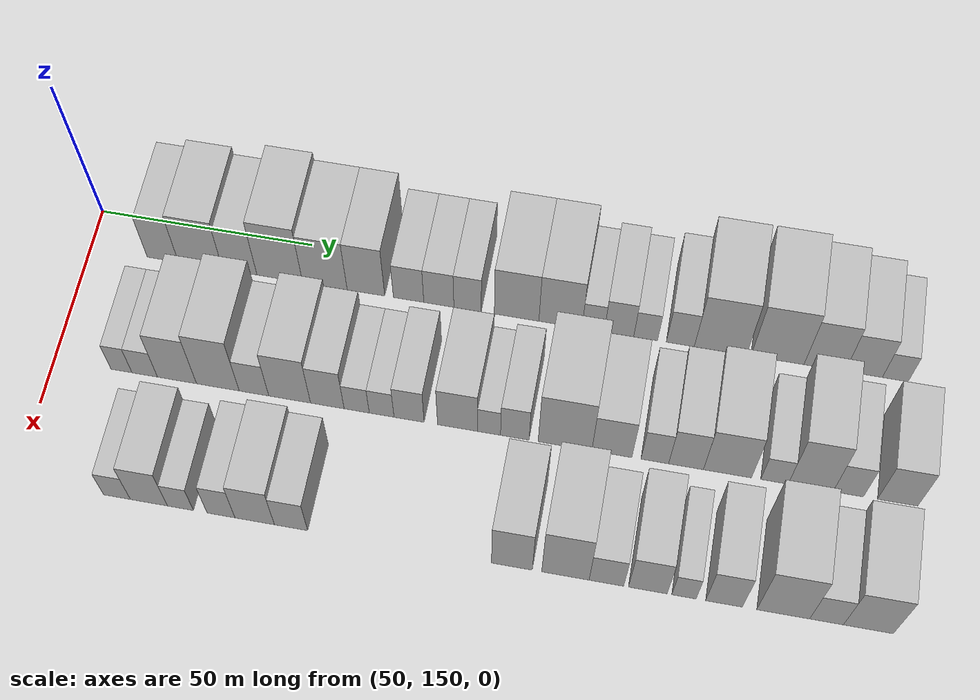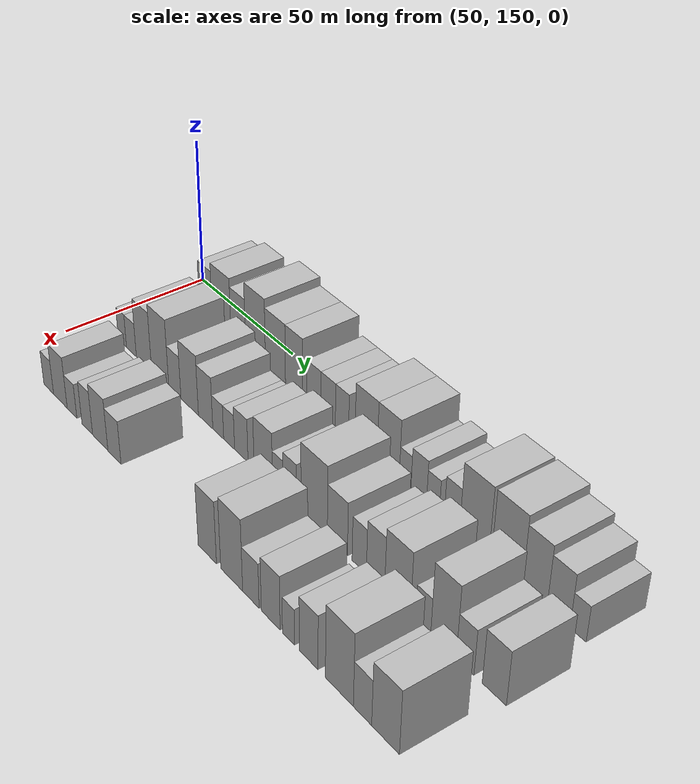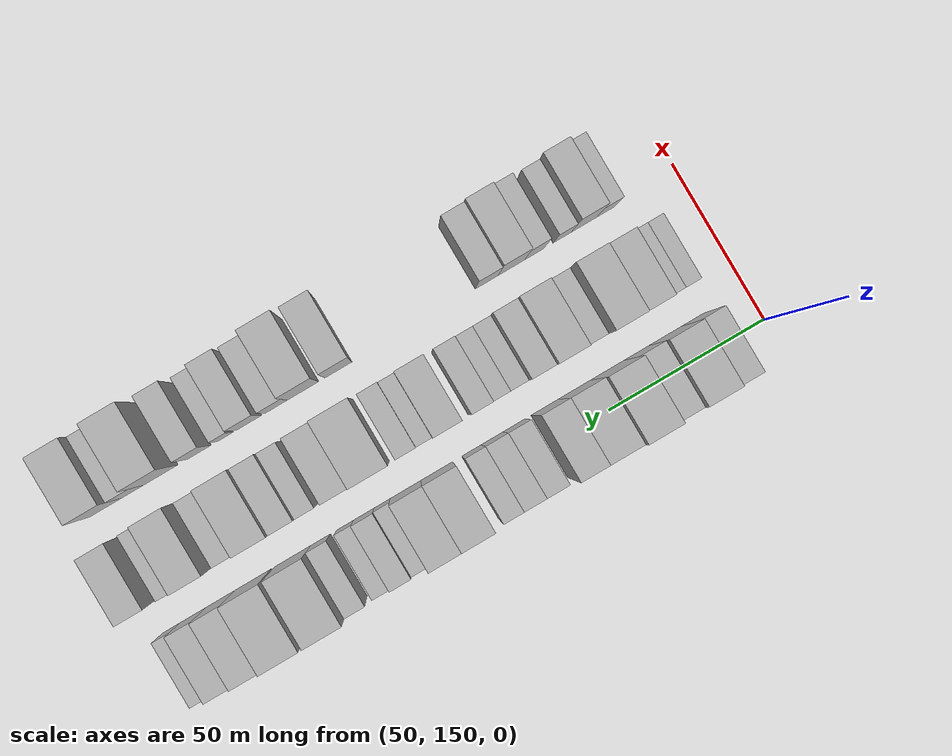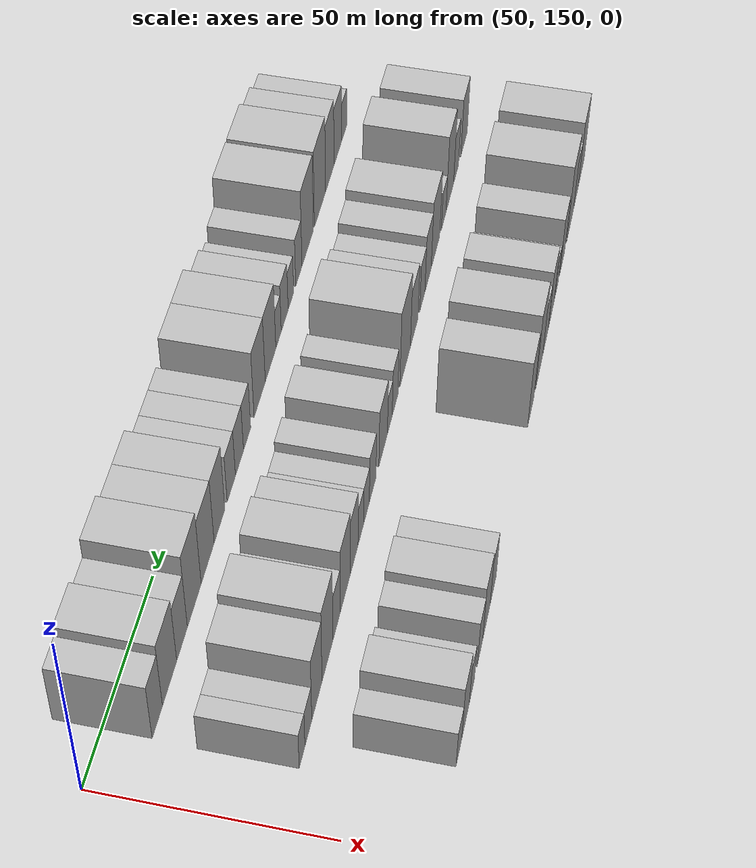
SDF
<sdf version="1.6">
 <world name="default">
  <model name="building_61">
   <static>1</static>
   <pose>50.0000 167.1661 0 0.000000 0.000000 0.000000</pose>
   <link name="link">
    <pose>0 0 9.00 0 0 0</pose>
    <collision name="collision"><geometry><box><size>20.0000 7.4073 18.0000</size></box></geometry></collision>
    <visual name="visual">
     <cast_shadows>0</cast_shadows>
     <geometry><box><size>20.0000 7.4073 18.0000</size></box></geometry>
     <material>
      <script>
       <uri>model://HANNAS_wall/materials/scripts</uri>
       <uri>model://HANNAS_wall/materials/textures</uri>
       <name>vrc/HANNAS_wall</name>
      </script>
     </material>
    </visual>
   </link>
  </model>
  <model name="building_62">
   <static>1</static>
   <pose>50.0000 176.1148 0 0.000000 0.000000 0.000000</pose>
   <link name="link">
    <pose>0 0 10.50 0 0 0</pose>
    <collision name="collision"><geometry><box><size>20.0000 10.4902 21.0000</size></box></geometry></collision>
    <visual name="visual">
     <cast_shadows>0</cast_shadows>
     <geometry><box><size>20.0000 10.4902 21.0000</size></box></geometry>
     <material>
      <script>
       <uri>model://HANNAS_wall/materials/scripts</uri>
       <uri>model://HANNAS_wall/materials/textures</uri>
       <name>vrc/HANNAS_wall</name>
      </script>
     </material>
    </visual>
   </link>
  </model>
  <model name="building_63">
   <static>1</static>
   <pose>50.0000 185.3982 0 0.000000 0.000000 0.000000</pose>
   <link name="link">
    <pose>0 0 9.00 0 0 0</pose>
    <collision name="collision"><geometry><box><size>20.0000 8.0765 18.0000</size></box></geometry></collision>
    <visual name="visual">
     <cast_shadows>0</cast_shadows>
     <geometry><box><size>20.0000 8.0765 18.0000</size></box></geometry>
     <material>
      <script>
       <uri>model://HANNAS_wall/materials/scripts</uri>
       <uri>model://HANNAS_wall/materials/textures</uri>
       <name>vrc/HANNAS_wall</name>
      </script>
     </material>
    </visual>
   </link>
  </model>
  <model name="building_64">
   <static>1</static>
   <pose>50.0000 194.7967 0 0.000000 0.000000 0.000000</pose>
   <link name="link">
    <pose>0 0 12.00 0 0 0</pose>
    <collision name="collision"><geometry><box><size>20.0000 10.7207 24.0000</size></box></geometry></collision>
    <visual name="visual">
     <cast_shadows>0</cast_shadows>
     <geometry><box><size>20.0000 10.7207 24.0000</size></box></geometry>
     <material>
      <script>
       <uri>model://HANNAS_wall/materials/scripts</uri>
       <uri>model://HANNAS_wall/materials/textures</uri>
       <name>vrc/HANNAS_wall</name>
      </script>
     </material>
    </visual>
   </link>
  </model>
  <model name="building_65">
   <static>1</static>
   <pose>50.0000 205.3637 0 0.000000 0.000000 0.000000</pose>
   <link name="link">
    <pose>0 0 10.50 0 0 0</pose>
    <collision name="collision"><geometry><box><size>20.0000 10.4133 21.0000</size></box></geometry></collision>
    <visual name="visual">
     <cast_shadows>0</cast_shadows>
     <geometry><box><size>20.0000 10.4133 21.0000</size></box></geometry>
     <material>
      <script>
       <uri>model://HANNAS_wall/materials/scripts</uri>
       <uri>model://HANNAS_wall/materials/textures</uri>
       <name>vrc/HANNAS_wall</name>
      </script>
     </material>
    </visual>
   </link>
  </model>
  <model name="building_66">
   <static>1</static>
   <pose>50.0000 214.9520 0 0.000000 0.000000 0.000000</pose>
   <link name="link">
    <pose>0 0 10.50 0 0 0</pose>
    <collision name="collision"><geometry><box><size>20.0000 8.7633 21.0000</size></box></geometry></collision>
    <visual name="visual">
     <cast_shadows>0</cast_shadows>
     <geometry><box><size>20.0000 8.7633 21.0000</size></box></geometry>
     <material>
      <script>
       <uri>model://HANNAS_wall/materials/scripts</uri>
       <uri>model://HANNAS_wall/materials/textures</uri>
       <name>vrc/HANNAS_wall</name>
      </script>
     </material>
    </visual>
   </link>
  </model>
  <model name="building_67">
   <static>1</static>
   <pose>50.0000 224.8549 0 0.000000 0.000000 0.000000</pose>
   <link name="link">
    <pose>0 0 7.50 0 0 0</pose>
    <collision name="collision"><geometry><box><size>20.0000 7.0425 15.0000</size></box></geometry></collision>
    <visual name="visual">
     <cast_shadows>0</cast_shadows>
     <geometry><box><size>20.0000 7.0425 15.0000</size></box></geometry>
     <material>
      <script>
       <uri>model://HANNAS_wall/materials/scripts</uri>
       <uri>model://HANNAS_wall/materials/textures</uri>
       <name>vrc/HANNAS_wall</name>
      </script>
     </material>
    </visual>
   </link>
  </model>
  <model name="building_68">
   <static>1</static>
   <pose>50.0000 231.8594 0 0.000000 0.000000 0.000000</pose>
   <link name="link">
    <pose>0 0 7.50 0 0 0</pose>
    <collision name="collision"><geometry><box><size>20.0000 6.9664 15.0000</size></box></geometry></collision>
    <visual name="visual">
     <cast_shadows>0</cast_shadows>
     <geometry><box><size>20.0000 6.9664 15.0000</size></box></geometry>
     <material>
      <script>
       <uri>model://HANNAS_wall/materials/scripts</uri>
       <uri>model://HANNAS_wall/materials/textures</uri>
       <name>vrc/HANNAS_wall</name>
      </script>
     </material>
    </visual>
   </link>
  </model>
  <model name="building_69">
   <static>1</static>
   <pose>50.0000 238.4958 0 0.000000 0.000000 0.000000</pose>
   <link name="link">
    <pose>0 0 7.50 0 0 0</pose>
    <collision name="collision"><geometry><box><size>20.0000 6.3065 15.0000</size></box></geometry></collision>
    <visual name="visual">
     <cast_shadows>0</cast_shadows>
     <geometry><box><size>20.0000 6.3065 15.0000</size></box></geometry>
     <material>
      <script>
       <uri>model://HANNAS_wall/materials/scripts</uri>
       <uri>model://HANNAS_wall/materials/textures</uri>
       <name>vrc/HANNAS_wall</name>
      </script>
     </material>
    </visual>
   </link>
  </model>
  <model name="building_70">
   <static>1</static>
   <pose>50.0000 249.7604 0 0.000000 0.000000 0.000000</pose>
   <link name="link">
    <pose>0 0 10.50 0 0 0</pose>
    <collision name="collision"><geometry><box><size>20.0000 10.2226 21.0000</size></box></geometry></collision>
    <visual name="visual">
     <cast_shadows>0</cast_shadows>
     <geometry><box><size>20.0000 10.2226 21.0000</size></box></geometry>
     <material>
      <script>
       <uri>model://HANNAS_wall/materials/scripts</uri>
       <uri>model://HANNAS_wall/materials/textures</uri>
       <name>vrc/HANNAS_wall</name>
      </script>
     </material>
    </visual>
   </link>
  </model>
  <model name="building_71">
   <static>1</static>
   <pose>50.0000 259.7965 0 0.000000 0.000000 0.000000</pose>
   <link name="link">
    <pose>0 0 10.50 0 0 0</pose>
    <collision name="collision"><geometry><box><size>20.0000 9.8497 21.0000</size></box></geometry></collision>
    <visual name="visual">
     <cast_shadows>0</cast_shadows>
     <geometry><box><size>20.0000 9.8497 21.0000</size></box></geometry>
     <material>
      <script>
       <uri>model://HANNAS_wall/materials/scripts</uri>
       <uri>model://HANNAS_wall/materials/textures</uri>
       <name>vrc/HANNAS_wall</name>
      </script>
     </material>
    </visual>
   </link>
  </model>
  <model name="building_72">
   <static>1</static>
   <pose>50.0000 267.2616 0 0.000000 0.000000 0.000000</pose>
   <link name="link">
    <pose>0 0 6.00 0 0 0</pose>
    <collision name="collision"><geometry><box><size>20.0000 5.0805 12.0000</size></box></geometry></collision>
    <visual name="visual">
     <cast_shadows>0</cast_shadows>
     <geometry><box><size>20.0000 5.0805 12.0000</size></box></geometry>
     <material>
      <script>
       <uri>model://HANNAS_wall/materials/scripts</uri>
       <uri>model://HANNAS_wall/materials/textures</uri>
       <name>vrc/HANNAS_wall</name>
      </script>
     </material>
    </visual>
   </link>
  </model>
  <model name="building_73">
   <static>1</static>
   <pose>50.0000 273.1415 0 0.000000 0.000000 0.000000</pose>
   <link name="link">
    <pose>0 0 7.50 0 0 0</pose>
    <collision name="collision"><geometry><box><size>20.0000 6.6795 15.0000</size></box></geometry></collision>
    <visual name="visual">
     <cast_shadows>0</cast_shadows>
     <geometry><box><size>20.0000 6.6795 15.0000</size></box></geometry>
     <material>
      <script>
       <uri>model://HANNAS_wall/materials/scripts</uri>
       <uri>model://HANNAS_wall/materials/textures</uri>
       <name>vrc/HANNAS_wall</name>
      </script>
     </material>
    </visual>
   </link>
  </model>
  <model name="building_74">
   <static>1</static>
   <pose>50.0000 279.1831 0 0.000000 0.000000 0.000000</pose>
   <link name="link">
    <pose>0 0 6.00 0 0 0</pose>
    <collision name="collision"><geometry><box><size>20.0000 5.4036 12.0000</size></box></geometry></collision>
    <visual name="visual">
     <cast_shadows>0</cast_shadows>
     <geometry><box><size>20.0000 5.4036 12.0000</size></box></geometry>
     <material>
      <script>
       <uri>model://HANNAS_wall/materials/scripts</uri>
       <uri>model://HANNAS_wall/materials/textures</uri>
       <name>vrc/HANNAS_wall</name>
      </script>
     </material>
    </visual>
   </link>
  </model>
  <model name="building_75">
   <static>1</static>
   <pose>50.0000 287.0433 0 0.000000 0.000000 0.000000</pose>
   <link name="link">
    <pose>0 0 7.50 0 0 0</pose>
    <collision name="collision"><geometry><box><size>20.0000 6.3169 15.0000</size></box></geometry></collision>
    <visual name="visual">
     <cast_shadows>0</cast_shadows>
     <geometry><box><size>20.0000 6.3169 15.0000</size></box></geometry>
     <material>
      <script>
       <uri>model://HANNAS_wall/materials/scripts</uri>
       <uri>model://HANNAS_wall/materials/textures</uri>
       <name>vrc/HANNAS_wall</name>
      </script>
     </material>
    </visual>
   </link>
  </model>
  <model name="building_76">
   <static>1</static>
   <pose>50.0000 296.0653 0 0.000000 0.000000 0.000000</pose>
   <link name="link">
    <pose>0 0 12.00 0 0 0</pose>
    <collision name="collision"><geometry><box><size>20.0000 11.7271 24.0000</size></box></geometry></collision>
    <visual name="visual">
     <cast_shadows>0</cast_shadows>
     <geometry><box><size>20.0000 11.7271 24.0000</size></box></geometry>
     <material>
      <script>
       <uri>model://HANNAS_wall/materials/scripts</uri>
       <uri>model://HANNAS_wall/materials/textures</uri>
       <name>vrc/HANNAS_wall</name>
      </script>
     </material>
    </visual>
   </link>
  </model>
  <model name="building_77">
   <static>1</static>
   <pose>50.0000 308.8688 0 0.000000 0.000000 0.000000</pose>
   <link name="link">
    <pose>0 0 12.00 0 0 0</pose>
    <collision name="collision"><geometry><box><size>20.0000 11.8798 24.0000</size></box></geometry></collision>
    <visual name="visual">
     <cast_shadows>0</cast_shadows>
     <geometry><box><size>20.0000 11.8798 24.0000</size></box></geometry>
     <material>
      <script>
       <uri>model://HANNAS_wall/materials/scripts</uri>
       <uri>model://HANNAS_wall/materials/textures</uri>
       <name>vrc/HANNAS_wall</name>
      </script>
     </material>
    </visual>
   </link>
  </model>
  <model name="building_78">
   <static>1</static>
   <pose>50.0000 319.3805 0 0.000000 0.000000 0.000000</pose>
   <link name="link">
    <pose>0 0 10.50 0 0 0</pose>
    <collision name="collision"><geometry><box><size>20.0000 9.1436 21.0000</size></box></geometry></collision>
    <visual name="visual">
     <cast_shadows>0</cast_shadows>
     <geometry><box><size>20.0000 9.1436 21.0000</size></box></geometry>
     <material>
      <script>
       <uri>model://HANNAS_wall/materials/scripts</uri>
       <uri>model://HANNAS_wall/materials/textures</uri>
       <name>vrc/HANNAS_wall</name>
      </script>
     </material>
    </visual>
   </link>
  </model>
  <model name="building_79">
   <static>1</static>
   <pose>50.0000 328.1039 0 0.000000 0.000000 0.000000</pose>
   <link name="link">
    <pose>0 0 9.00 0 0 0</pose>
    <collision name="collision"><geometry><box><size>20.0000 8.3032 18.0000</size></box></geometry></collision>
    <visual name="visual">
     <cast_shadows>0</cast_shadows>
     <geometry><box><size>20.0000 8.3032 18.0000</size></box></geometry>
     <material>
      <script>
       <uri>model://HANNAS_wall/materials/scripts</uri>
       <uri>model://HANNAS_wall/materials/textures</uri>
       <name>vrc/HANNAS_wall</name>
      </script>
     </material>
    </visual>
   </link>
  </model>
  <model name="building_80">
   <static>1</static>
   <pose>50.0000 335.1193 0 0.000000 0.000000 0.000000</pose>
   <link name="link">
    <pose>0 0 6.00 0 0 0</pose>
    <collision name="collision"><geometry><box><size>20.0000 5.7276 12.0000</size></box></geometry></collision>
    <visual name="visual">
     <cast_shadows>0</cast_shadows>
     <geometry><box><size>20.0000 5.7276 12.0000</size></box></geometry>
     <material>
      <script>
       <uri>model://HANNAS_wall/materials/scripts</uri>
       <uri>model://HANNAS_wall/materials/textures</uri>
       <name>vrc/HANNAS_wall</name>
      </script>
     </material>
    </visual>
   </link>
  </model>
  <model name="building_136">
   <static>1</static>
   <pose>79.0000 165.5498 0 0.000000 0.000000 0.000000</pose>
   <link name="link">
    <pose>0 0 6.00 0 0 0</pose>
    <collision name="collision"><geometry><box><size>20.0000 4.8491 12.0000</size></box></geometry></collision>
    <visual name="visual">
     <cast_shadows>0</cast_shadows>
     <geometry><box><size>20.0000 4.8491 12.0000</size></box></geometry>
     <material>
      <script>
       <uri>model://HANNAS_wall/materials/scripts</uri>
       <uri>model://HANNAS_wall/materials/textures</uri>
       <name>vrc/HANNAS_wall</name>
      </script>
     </material>
    </visual>
   </link>
  </model>
  <model name="building_137">
   <static>1</static>
   <pose>79.0000 170.9024 0 0.000000 0.000000 0.000000</pose>
   <link name="link">
    <pose>0 0 6.00 0 0 0</pose>
    <collision name="collision"><geometry><box><size>20.0000 5.8561 12.0000</size></box></geometry></collision>
    <visual name="visual">
     <cast_shadows>0</cast_shadows>
     <geometry><box><size>20.0000 5.8561 12.0000</size></box></geometry>
     <material>
      <script>
       <uri>model://HANNAS_wall/materials/scripts</uri>
       <uri>model://HANNAS_wall/materials/textures</uri>
       <name>vrc/HANNAS_wall</name>
      </script>
     </material>
    </visual>
   </link>
  </model>
  <model name="building_138">
   <static>1</static>
   <pose>79.0000 178.2999 0 0.000000 0.000000 0.000000</pose>
   <link name="link">
    <pose>0 0 10.50 0 0 0</pose>
    <collision name="collision"><geometry><box><size>20.0000 8.9388 21.0000</size></box></geometry></collision>
    <visual name="visual">
     <cast_shadows>0</cast_shadows>
     <geometry><box><size>20.0000 8.9388 21.0000</size></box></geometry>
     <material>
      <script>
       <uri>model://HANNAS_wall/materials/scripts</uri>
       <uri>model://HANNAS_wall/materials/textures</uri>
       <name>vrc/HANNAS_wall</name>
      </script>
     </material>
    </visual>
   </link>
  </model>
  <model name="building_139">
   <static>1</static>
   <pose>79.0000 187.6305 0 0.000000 0.000000 0.000000</pose>
   <link name="link">
    <pose>0 0 12.00 0 0 0</pose>
    <collision name="collision"><geometry><box><size>20.0000 9.7225 24.0000</size></box></geometry></collision>
    <visual name="visual">
     <cast_shadows>0</cast_shadows>
     <geometry><box><size>20.0000 9.7225 24.0000</size></box></geometry>
     <material>
      <script>
       <uri>model://HANNAS_wall/materials/scripts</uri>
       <uri>model://HANNAS_wall/materials/textures</uri>
       <name>vrc/HANNAS_wall</name>
      </script>
     </material>
    </visual>
   </link>
  </model>
  <model name="building_140">
   <static>1</static>
   <pose>79.0000 195.8603 0 0.000000 0.000000 0.000000</pose>
   <link name="link">
    <pose>0 0 7.50 0 0 0</pose>
    <collision name="collision"><geometry><box><size>20.0000 6.7371 15.0000</size></box></geometry></collision>
    <visual name="visual">
     <cast_shadows>0</cast_shadows>
     <geometry><box><size>20.0000 6.7371 15.0000</size></box></geometry>
     <material>
      <script>
       <uri>model://HANNAS_wall/materials/scripts</uri>
       <uri>model://HANNAS_wall/materials/textures</uri>
       <name>vrc/HANNAS_wall</name>
      </script>
     </material>
    </visual>
   </link>
  </model>
  <model name="building_141">
   <static>1</static>
   <pose>79.0000 203.9608 0 0.000000 0.000000 0.000000</pose>
   <link name="link">
    <pose>0 0 10.50 0 0 0</pose>
    <collision name="collision"><geometry><box><size>20.0000 9.4640 21.0000</size></box></geometry></collision>
    <visual name="visual">
     <cast_shadows>0</cast_shadows>
     <geometry><box><size>20.0000 9.4640 21.0000</size></box></geometry>
     <material>
      <script>
       <uri>model://HANNAS_wall/materials/scripts</uri>
       <uri>model://HANNAS_wall/materials/textures</uri>
       <name>vrc/HANNAS_wall</name>
      </script>
     </material>
    </visual>
   </link>
  </model>
  <model name="building_142">
   <static>1</static>
   <pose>79.0000 212.4863 0 0.000000 0.000000 0.000000</pose>
   <link name="link">
    <pose>0 0 9.00 0 0 0</pose>
    <collision name="collision"><geometry><box><size>20.0000 7.5870 18.0000</size></box></geometry></collision>
    <visual name="visual">
     <cast_shadows>0</cast_shadows>
     <geometry><box><size>20.0000 7.5870 18.0000</size></box></geometry>
     <material>
      <script>
       <uri>model://HANNAS_wall/materials/scripts</uri>
       <uri>model://HANNAS_wall/materials/textures</uri>
       <name>vrc/HANNAS_wall</name>
      </script>
     </material>
    </visual>
   </link>
  </model>
  <model name="building_143">
   <static>1</static>
   <pose>79.0000 219.1051 0 0.000000 0.000000 0.000000</pose>
   <link name="link">
    <pose>0 0 6.00 0 0 0</pose>
    <collision name="collision"><geometry><box><size>20.0000 5.6507 12.0000</size></box></geometry></collision>
    <visual name="visual">
     <cast_shadows>0</cast_shadows>
     <geometry><box><size>20.0000 5.6507 12.0000</size></box></geometry>
     <material>
      <script>
       <uri>model://HANNAS_wall/materials/scripts</uri>
       <uri>model://HANNAS_wall/materials/textures</uri>
       <name>vrc/HANNAS_wall</name>
      </script>
     </material>
    </visual>
   </link>
  </model>
  <model name="building_144">
   <static>1</static>
   <pose>79.0000 224.7075 0 0.000000 0.000000 0.000000</pose>
   <link name="link">
    <pose>0 0 6.00 0 0 0</pose>
    <collision name="collision"><geometry><box><size>20.0000 5.5541 12.0000</size></box></geometry></collision>
    <visual name="visual">
     <cast_shadows>0</cast_shadows>
     <geometry><box><size>20.0000 5.5541 12.0000</size></box></geometry>
     <material>
      <script>
       <uri>model://HANNAS_wall/materials/scripts</uri>
       <uri>model://HANNAS_wall/materials/textures</uri>
       <name>vrc/HANNAS_wall</name>
      </script>
     </material>
    </visual>
   </link>
  </model>
  <model name="building_145">
   <static>1</static>
   <pose>79.0000 230.8540 0 0.000000 0.000000 0.000000</pose>
   <link name="link">
    <pose>0 0 7.50 0 0 0</pose>
    <collision name="collision"><geometry><box><size>20.0000 6.7390 15.0000</size></box></geometry></collision>
    <visual name="visual">
     <cast_shadows>0</cast_shadows>
     <geometry><box><size>20.0000 6.7390 15.0000</size></box></geometry>
     <material>
      <script>
       <uri>model://HANNAS_wall/materials/scripts</uri>
       <uri>model://HANNAS_wall/materials/textures</uri>
       <name>vrc/HANNAS_wall</name>
      </script>
     </material>
    </visual>
   </link>
  </model>
  <model name="building_146">
   <static>1</static>
   <pose>79.0000 241.6900 0 0.000000 0.000000 0.000000</pose>
   <link name="link">
    <pose>0 0 9.00 0 0 0</pose>
    <collision name="collision"><geometry><box><size>20.0000 8.9329 18.0000</size></box></geometry></collision>
    <visual name="visual">
     <cast_shadows>0</cast_shadows>
     <geometry><box><size>20.0000 8.9329 18.0000</size></box></geometry>
     <material>
      <script>
       <uri>model://HANNAS_wall/materials/scripts</uri>
       <uri>model://HANNAS_wall/materials/textures</uri>
       <name>vrc/HANNAS_wall</name>
      </script>
     </material>
    </visual>
   </link>
  </model>
  <model name="building_147">
   <static>1</static>
   <pose>79.0000 248.6959 0 0.000000 0.000000 0.000000</pose>
   <link name="link">
    <pose>0 0 6.00 0 0 0</pose>
    <collision name="collision"><geometry><box><size>20.0000 5.0788 12.0000</size></box></geometry></collision>
    <visual name="visual">
     <cast_shadows>0</cast_shadows>
     <geometry><box><size>20.0000 5.0788 12.0000</size></box></geometry>
     <material>
      <script>
       <uri>model://HANNAS_wall/materials/scripts</uri>
       <uri>model://HANNAS_wall/materials/textures</uri>
       <name>vrc/HANNAS_wall</name>
      </script>
     </material>
    </visual>
   </link>
  </model>
  <model name="building_148">
   <static>1</static>
   <pose>79.0000 254.3958 0 0.000000 0.000000 0.000000</pose>
   <link name="link">
    <pose>0 0 7.50 0 0 0</pose>
    <collision name="collision"><geometry><box><size>20.0000 6.3210 15.0000</size></box></geometry></collision>
    <visual name="visual">
     <cast_shadows>0</cast_shadows>
     <geometry><box><size>20.0000 6.3210 15.0000</size></box></geometry>
     <material>
      <script>
       <uri>model://HANNAS_wall/materials/scripts</uri>
       <uri>model://HANNAS_wall/materials/textures</uri>
       <name>vrc/HANNAS_wall</name>
      </script>
     </material>
    </visual>
   </link>
  </model>
  <model name="building_149">
   <static>1</static>
   <pose>79.0000 265.4739 0 0.000000 0.000000 0.000000</pose>
   <link name="link">
    <pose>0 0 12.00 0 0 0</pose>
    <collision name="collision"><geometry><box><size>20.0000 11.8352 24.0000</size></box></geometry></collision>
    <visual name="visual">
     <cast_shadows>0</cast_shadows>
     <geometry><box><size>20.0000 11.8352 24.0000</size></box></geometry>
     <material>
      <script>
       <uri>model://HANNAS_wall/materials/scripts</uri>
       <uri>model://HANNAS_wall/materials/textures</uri>
       <name>vrc/HANNAS_wall</name>
      </script>
     </material>
    </visual>
   </link>
  </model>
  <model name="building_150">
   <static>1</static>
   <pose>79.0000 275.7903 0 0.000000 0.000000 0.000000</pose>
   <link name="link">
    <pose>0 0 9.00 0 0 0</pose>
    <collision name="collision"><geometry><box><size>20.0000 8.7977 18.0000</size></box></geometry></collision>
    <visual name="visual">
     <cast_shadows>0</cast_shadows>
     <geometry><box><size>20.0000 8.7977 18.0000</size></box></geometry>
     <material>
      <script>
       <uri>model://HANNAS_wall/materials/scripts</uri>
       <uri>model://HANNAS_wall/materials/textures</uri>
       <name>vrc/HANNAS_wall</name>
      </script>
     </material>
    </visual>
   </link>
  </model>
  <model name="building_151">
   <static>1</static>
   <pose>79.0000 285.2104 0 0.000000 0.000000 0.000000</pose>
   <link name="link">
    <pose>0 0 7.50 0 0 0</pose>
    <collision name="collision"><geometry><box><size>20.0000 6.0424 15.0000</size></box></geometry></collision>
    <visual name="visual">
     <cast_shadows>0</cast_shadows>
     <geometry><box><size>20.0000 6.0424 15.0000</size></box></geometry>
     <material>
      <script>
       <uri>model://HANNAS_wall/materials/scripts</uri>
       <uri>model://HANNAS_wall/materials/textures</uri>
       <name>vrc/HANNAS_wall</name>
      </script>
     </material>
    </visual>
   </link>
  </model>
  <model name="building_152">
   <static>1</static>
   <pose>79.0000 292.0234 0 0.000000 0.000000 0.000000</pose>
   <link name="link">
    <pose>0 0 9.00 0 0 0</pose>
    <collision name="collision"><geometry><box><size>20.0000 7.5835 18.0000</size></box></geometry></collision>
    <visual name="visual">
     <cast_shadows>0</cast_shadows>
     <geometry><box><size>20.0000 7.5835 18.0000</size></box></geometry>
     <material>
      <script>
       <uri>model://HANNAS_wall/materials/scripts</uri>
       <uri>model://HANNAS_wall/materials/textures</uri>
       <name>vrc/HANNAS_wall</name>
      </script>
     </material>
    </visual>
   </link>
  </model>
  <model name="building_153">
   <static>1</static>
   <pose>79.0000 301.0361 0 0.000000 0.000000 0.000000</pose>
   <link name="link">
    <pose>0 0 10.50 0 0 0</pose>
    <collision name="collision"><geometry><box><size>20.0000 10.4419 21.0000</size></box></geometry></collision>
    <visual name="visual">
     <cast_shadows>0</cast_shadows>
     <geometry><box><size>20.0000 10.4419 21.0000</size></box></geometry>
     <material>
      <script>
       <uri>model://HANNAS_wall/materials/scripts</uri>
       <uri>model://HANNAS_wall/materials/textures</uri>
       <name>vrc/HANNAS_wall</name>
      </script>
     </material>
    </visual>
   </link>
  </model>
  <model name="building_154">
   <static>1</static>
   <pose>79.0000 311.2162 0 0.000000 0.000000 0.000000</pose>
   <link name="link">
    <pose>0 0 6.00 0 0 0</pose>
    <collision name="collision"><geometry><box><size>20.0000 5.9182 12.0000</size></box></geometry></collision>
    <visual name="visual">
     <cast_shadows>0</cast_shadows>
     <geometry><box><size>20.0000 5.9182 12.0000</size></box></geometry>
     <material>
      <script>
       <uri>model://HANNAS_wall/materials/scripts</uri>
       <uri>model://HANNAS_wall/materials/textures</uri>
       <name>vrc/HANNAS_wall</name>
      </script>
     </material>
    </visual>
   </link>
  </model>
  <model name="building_155">
   <static>1</static>
   <pose>79.0000 319.0202 0 0.000000 0.000000 0.000000</pose>
   <link name="link">
    <pose>0 0 12.00 0 0 0</pose>
    <collision name="collision"><geometry><box><size>20.0000 9.6899 24.0000</size></box></geometry></collision>
    <visual name="visual">
     <cast_shadows>0</cast_shadows>
     <geometry><box><size>20.0000 9.6899 24.0000</size></box></geometry>
     <material>
      <script>
       <uri>model://HANNAS_wall/materials/scripts</uri>
       <uri>model://HANNAS_wall/materials/textures</uri>
       <name>vrc/HANNAS_wall</name>
      </script>
     </material>
    </visual>
   </link>
  </model>
  <model name="building_156">
   <static>1</static>
   <pose>79.0000 327.1282 0 0.000000 0.000000 0.000000</pose>
   <link name="link">
    <pose>0 0 7.50 0 0 0</pose>
    <collision name="collision"><geometry><box><size>20.0000 6.5262 15.0000</size></box></geometry></collision>
    <visual name="visual">
     <cast_shadows>0</cast_shadows>
     <geometry><box><size>20.0000 6.5262 15.0000</size></box></geometry>
     <material>
      <script>
       <uri>model://HANNAS_wall/materials/scripts</uri>
       <uri>model://HANNAS_wall/materials/textures</uri>
       <name>vrc/HANNAS_wall</name>
      </script>
     </material>
    </visual>
   </link>
  </model>
  <model name="building_157">
   <static>1</static>
   <pose>79.0000 337.6973 0 0.000000 0.000000 0.000000</pose>
   <link name="link">
    <pose>0 0 9.00 0 0 0</pose>
    <collision name="collision"><geometry><box><size>20.0000 8.6119 18.0000</size></box></geometry></collision>
    <visual name="visual">
     <cast_shadows>0</cast_shadows>
     <geometry><box><size>20.0000 8.6119 18.0000</size></box></geometry>
     <material>
      <script>
       <uri>model://HANNAS_wall/materials/scripts</uri>
       <uri>model://HANNAS_wall/materials/textures</uri>
       <name>vrc/HANNAS_wall</name>
      </script>
     </material>
    </visual>
   </link>
  </model>
  <model name="building_213">
   <static>1</static>
   <pose>108.0000 172.7912 0 0.000000 0.000000 0.000000</pose>
   <link name="link">
    <pose>0 0 6.00 0 0 0</pose>
    <collision name="collision"><geometry><box><size>20.0000 5.9394 12.0000</size></box></geometry></collision>
    <visual name="visual">
     <cast_shadows>0</cast_shadows>
     <geometry><box><size>20.0000 5.9394 12.0000</size></box></geometry>
     <material>
      <script>
       <uri>model://HANNAS_wall/materials/scripts</uri>
       <uri>model://HANNAS_wall/materials/textures</uri>
       <name>vrc/HANNAS_wall</name>
      </script>
     </material>
    </visual>
   </link>
  </model>
  <model name="building_214">
   <static>1</static>
   <pose>108.0000 179.8837 0 0.000000 0.000000 0.000000</pose>
   <link name="link">
    <pose>0 0 9.00 0 0 0</pose>
    <collision name="collision"><geometry><box><size>20.0000 8.2454 18.0000</size></box></geometry></collision>
    <visual name="visual">
     <cast_shadows>0</cast_shadows>
     <geometry><box><size>20.0000 8.2454 18.0000</size></box></geometry>
     <material>
      <script>
       <uri>model://HANNAS_wall/materials/scripts</uri>
       <uri>model://HANNAS_wall/materials/textures</uri>
       <name>vrc/HANNAS_wall</name>
      </script>
     </material>
    </visual>
   </link>
  </model>
  <model name="building_215">
   <static>1</static>
   <pose>108.0000 186.8578 0 0.000000 0.000000 0.000000</pose>
   <link name="link">
    <pose>0 0 6.00 0 0 0</pose>
    <collision name="collision"><geometry><box><size>20.0000 5.7028 12.0000</size></box></geometry></collision>
    <visual name="visual">
     <cast_shadows>0</cast_shadows>
     <geometry><box><size>20.0000 5.7028 12.0000</size></box></geometry>
     <material>
      <script>
       <uri>model://HANNAS_wall/materials/scripts</uri>
       <uri>model://HANNAS_wall/materials/textures</uri>
       <name>vrc/HANNAS_wall</name>
      </script>
     </material>
    </visual>
   </link>
  </model>
  <model name="building_216">
   <static>1</static>
   <pose>108.0000 195.7811 0 0.000000 0.000000 0.000000</pose>
   <link name="link">
    <pose>0 0 7.50 0 0 0</pose>
    <collision name="collision"><geometry><box><size>20.0000 6.1439 15.0000</size></box></geometry></collision>
    <visual name="visual">
     <cast_shadows>0</cast_shadows>
     <geometry><box><size>20.0000 6.1439 15.0000</size></box></geometry>
     <material>
      <script>
       <uri>model://HANNAS_wall/materials/scripts</uri>
       <uri>model://HANNAS_wall/materials/textures</uri>
       <name>vrc/HANNAS_wall</name>
      </script>
     </material>
    </visual>
   </link>
  </model>
  <model name="building_217">
   <static>1</static>
   <pose>108.0000 203.1690 0 0.000000 0.000000 0.000000</pose>
   <link name="link">
    <pose>0 0 9.00 0 0 0</pose>
    <collision name="collision"><geometry><box><size>20.0000 8.6319 18.0000</size></box></geometry></collision>
    <visual name="visual">
     <cast_shadows>0</cast_shadows>
     <geometry><box><size>20.0000 8.6319 18.0000</size></box></geometry>
     <material>
      <script>
       <uri>model://HANNAS_wall/materials/scripts</uri>
       <uri>model://HANNAS_wall/materials/textures</uri>
       <name>vrc/HANNAS_wall</name>
      </script>
     </material>
    </visual>
   </link>
  </model>
  <model name="building_218">
   <static>1</static>
   <pose>108.0000 211.1183 0 0.000000 0.000000 0.000000</pose>
   <link name="link">
    <pose>0 0 7.50 0 0 0</pose>
    <collision name="collision"><geometry><box><size>20.0000 7.2666 15.0000</size></box></geometry></collision>
    <visual name="visual">
     <cast_shadows>0</cast_shadows>
     <geometry><box><size>20.0000 7.2666 15.0000</size></box></geometry>
     <material>
      <script>
       <uri>model://HANNAS_wall/materials/scripts</uri>
       <uri>model://HANNAS_wall/materials/textures</uri>
       <name>vrc/HANNAS_wall</name>
      </script>
     </material>
    </visual>
   </link>
  </model>
  <model name="building_219">
   <static>1</static>
   <pose>108.0000 258.8161 0 0.000000 0.000000 0.000000</pose>
   <link name="link">
    <pose>0 0 10.50 0 0 0</pose>
    <collision name="collision"><geometry><box><size>20.0000 8.7097 21.0000</size></box></geometry></collision>
    <visual name="visual">
     <cast_shadows>0</cast_shadows>
     <geometry><box><size>20.0000 8.7097 21.0000</size></box></geometry>
     <material>
      <script>
       <uri>model://HANNAS_wall/materials/scripts</uri>
       <uri>model://HANNAS_wall/materials/textures</uri>
       <name>vrc/HANNAS_wall</name>
      </script>
     </material>
    </visual>
   </link>
  </model>
  <model name="building_220">
   <static>1</static>
   <pose>108.0000 270.2112 0 0.000000 0.000000 0.000000</pose>
   <link name="link">
    <pose>0 0 12.00 0 0 0</pose>
    <collision name="collision"><geometry><box><size>20.0000 10.0805 24.0000</size></box></geometry></collision>
    <visual name="visual">
     <cast_shadows>0</cast_shadows>
     <geometry><box><size>20.0000 10.0805 24.0000</size></box></geometry>
     <material>
      <script>
       <uri>model://HANNAS_wall/materials/scripts</uri>
       <uri>model://HANNAS_wall/materials/textures</uri>
       <name>vrc/HANNAS_wall</name>
      </script>
     </material>
    </visual>
   </link>
  </model>
  <model name="building_221">
   <static>1</static>
   <pose>108.0000 278.9205 0 0.000000 0.000000 0.000000</pose>
   <link name="link">
    <pose>0 0 7.50 0 0 0</pose>
    <collision name="collision"><geometry><box><size>20.0000 7.3381 15.0000</size></box></geometry></collision>
    <visual name="visual">
     <cast_shadows>0</cast_shadows>
     <geometry><box><size>20.0000 7.3381 15.0000</size></box></geometry>
     <material>
      <script>
       <uri>model://HANNAS_wall/materials/scripts</uri>
       <uri>model://HANNAS_wall/materials/textures</uri>
       <name>vrc/HANNAS_wall</name>
      </script>
     </material>
    </visual>
   </link>
  </model>
  <model name="building_222">
   <static>1</static>
   <pose>108.0000 287.6646 0 0.000000 0.000000 0.000000</pose>
   <link name="link">
    <pose>0 0 9.00 0 0 0</pose>
    <collision name="collision"><geometry><box><size>20.0000 8.1502 18.0000</size></box></geometry></collision>
    <visual name="visual">
     <cast_shadows>0</cast_shadows>
     <geometry><box><size>20.0000 8.1502 18.0000</size></box></geometry>
     <material>
      <script>
       <uri>model://HANNAS_wall/materials/scripts</uri>
       <uri>model://HANNAS_wall/materials/textures</uri>
       <name>vrc/HANNAS_wall</name>
      </script>
     </material>
    </visual>
   </link>
  </model>
  <model name="building_223">
   <static>1</static>
   <pose>108.0000 295.2943 0 0.000000 0.000000 0.000000</pose>
   <link name="link">
    <pose>0 0 6.00 0 0 0</pose>
    <collision name="collision"><geometry><box><size>20.0000 5.1093 12.0000</size></box></geometry></collision>
    <visual name="visual">
     <cast_shadows>0</cast_shadows>
     <geometry><box><size>20.0000 5.1093 12.0000</size></box></geometry>
     <material>
      <script>
       <uri>model://HANNAS_wall/materials/scripts</uri>
       <uri>model://HANNAS_wall/materials/textures</uri>
       <name>vrc/HANNAS_wall</name>
      </script>
     </material>
    </visual>
   </link>
  </model>
  <model name="building_224">
   <static>1</static>
   <pose>108.0000 303.7005 0 0.000000 0.000000 0.000000</pose>
   <link name="link">
    <pose>0 0 9.00 0 0 0</pose>
    <collision name="collision"><geometry><box><size>20.0000 7.7030 18.0000</size></box></geometry></collision>
    <visual name="visual">
     <cast_shadows>0</cast_shadows>
     <geometry><box><size>20.0000 7.7030 18.0000</size></box></geometry>
     <material>
      <script>
       <uri>model://HANNAS_wall/materials/scripts</uri>
       <uri>model://HANNAS_wall/materials/textures</uri>
       <name>vrc/HANNAS_wall</name>
      </script>
     </material>
    </visual>
   </link>
  </model>
  <model name="building_225">
   <static>1</static>
   <pose>108.0000 316.0656 0 0.000000 0.000000 0.000000</pose>
   <link name="link">
    <pose>0 0 12.00 0 0 0</pose>
    <collision name="collision"><geometry><box><size>20.0000 11.0271 24.0000</size></box></geometry></collision>
    <visual name="visual">
     <cast_shadows>0</cast_shadows>
     <geometry><box><size>20.0000 11.0271 24.0000</size></box></geometry>
     <material>
      <script>
       <uri>model://HANNAS_wall/materials/scripts</uri>
       <uri>model://HANNAS_wall/materials/textures</uri>
       <name>vrc/HANNAS_wall</name>
      </script>
     </material>
    </visual>
   </link>
  </model>
  <model name="building_226">
   <static>1</static>
   <pose>108.0000 325.0733 0 0.000000 0.000000 0.000000</pose>
   <link name="link">
    <pose>0 0 7.50 0 0 0</pose>
    <collision name="collision"><geometry><box><size>20.0000 6.9884 15.0000</size></box></geometry></collision>
    <visual name="visual">
     <cast_shadows>0</cast_shadows>
     <geometry><box><size>20.0000 6.9884 15.0000</size></box></geometry>
     <material>
      <script>
       <uri>model://HANNAS_wall/materials/scripts</uri>
       <uri>model://HANNAS_wall/materials/textures</uri>
       <name>vrc/HANNAS_wall</name>
      </script>
     </material>
    </visual>
   </link>
  </model>
  <model name="building_227">
   <static>1</static>
   <pose>108.0000 333.7259 0 0.000000 0.000000 0.000000</pose>
   <link name="link">
    <pose>0 0 10.50 0 0 0</pose>
    <collision name="collision"><geometry><box><size>20.0000 10.3166 21.0000</size></box></geometry></collision>
    <visual name="visual">
     <cast_shadows>0</cast_shadows>
     <geometry><box><size>20.0000 10.3166 21.0000</size></box></geometry>
     <material>
      <script>
       <uri>model://HANNAS_wall/materials/scripts</uri>
       <uri>model://HANNAS_wall/materials/textures</uri>
       <name>vrc/HANNAS_wall</name>
      </script>
     </material>
    </visual>
   </link>
  </model>
 </world>
</sdf>
